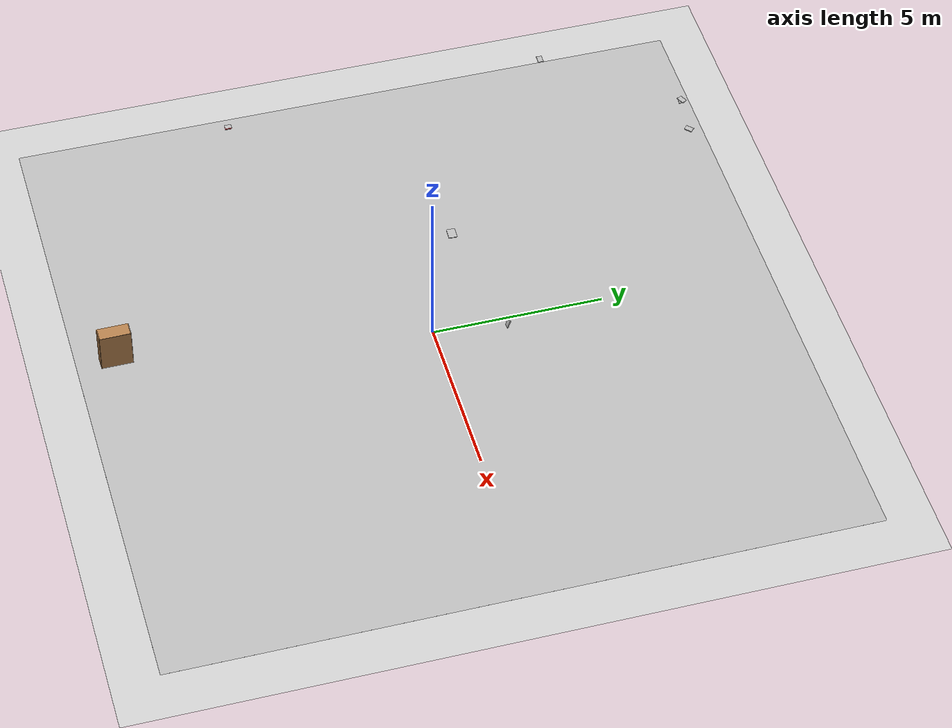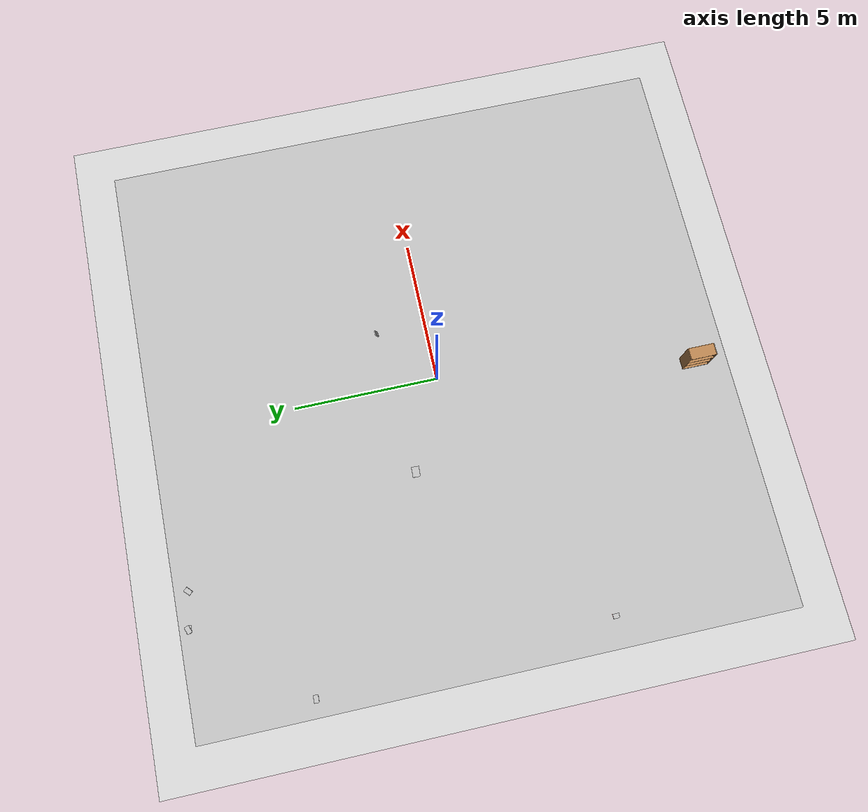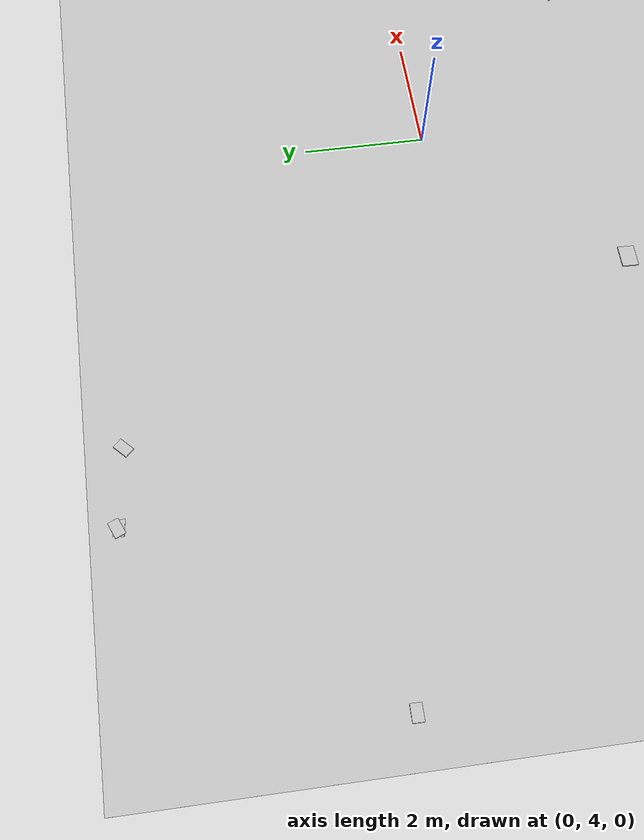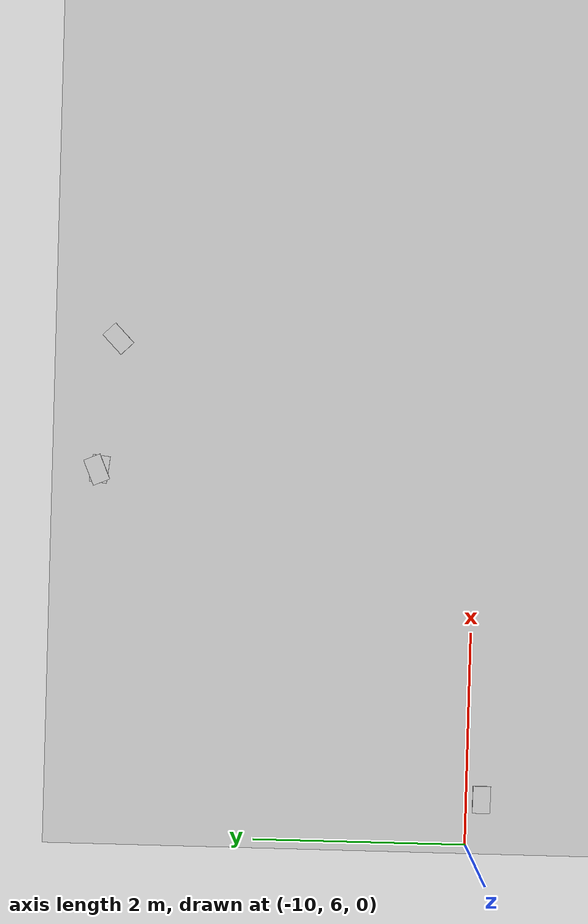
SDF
<sdf version="1.6">
 <world name="default">
  <plugin name="voxblox_ground_truth_plugin" filename="libvoxblox_ground_truth_plugin.so"/>
  <scene><shadows>0</shadows><ambient>0.4 0.4 0.4 1</ambient><background>0.7 0.7 0.7 1</background></scene>
  <light name="sun" type="directional">
   <cast_shadows>0</cast_shadows>
   <pose>0 0 5 0 -0 0</pose>
   <diffuse>0.8 0.8 0.8 1</diffuse>
   <specular>0.1 0.1 0.1 1</specular>
   <attenuation>
    <range>1000</range>
    <constant>0.9</constant>
    <linear>0.01</linear>
    <quadratic>0.001</quadratic>
   </attenuation>
   <direction>-0.5 0.5 -1</direction>
  </light>
  <physics name="default_physics" default="0" type="ode">
   <max_step_size>0.001</max_step_size>
   <real_time_factor>1</real_time_factor>
   <real_time_update_rate>1000</real_time_update_rate>
  </physics>
  <scene><ambient>0.4 0.4 0.4 1</ambient><background>0.7 0.7 0.7 1</background><shadows>1</shadows></scene>
  <spherical_coordinates>
   <surface_model>EARTH_WGS84</surface_model>
   <latitude_deg>0</latitude_deg>
   <longitude_deg>0</longitude_deg>
   <elevation>0</elevation>
   <heading_deg>0</heading_deg>
  </spherical_coordinates>
  <model name="ground_plane">
   <static>1</static>
   <link name="link">
    <collision name="collision">
     <geometry><plane><normal>0 0 1</normal><size>100 100</size></plane></geometry>
     <surface><friction><ode><mu>1</mu><mu2>1</mu2></ode></friction></surface>
    </collision>
    <visual name="visual">
     <cast_shadows>0</cast_shadows>
     <geometry><plane><normal>0 0 1</normal><size>100 100</size></plane></geometry>
     <material>
      <script><uri>file://media/materials/scripts/gazebo.material</uri><name>Gazebo/Grey</name></script>
     </material>
    </visual>
    <velocity_decay><linear>0</linear><angular>0</angular></velocity_decay>
   </link>
  </model>
  <gravity>0 0 -9.8</gravity>
  <magnetic_field>6e-06 2.3e-05 -4.2e-05</magnetic_field>
  <atmosphere type="adiabatic"/>
  <model name="bookshelf">
   <static>1</static>
   <link name="link">
    <inertial><mass>1</mass></inertial>
    <collision name="back">
     <pose>0 0.005 0.6 0 -0 0</pose>
     <geometry><box><size>0.9 0.01 1.2</size></box></geometry>
    </collision>
    <visual name="visual1">
     <pose>0 0.005 0.6 0 -0 0</pose>
     <geometry><box><size>0.9 0.01 1.2</size></box></geometry>
     <material>
      <script><uri>file://media/materials/scripts/gazebo.material</uri><name>Gazebo/Wood</name></script>
     </material>
    </visual>
    <collision name="left_side">
     <pose>0.45 -0.195 0.6 0 -0 0</pose>
     <geometry><box><size>0.02 0.4 1.2</size></box></geometry>
    </collision>
    <visual name="visual2">
     <pose>0.45 -0.195 0.6 0 -0 0</pose>
     <geometry><box><size>0.02 0.4 1.2</size></box></geometry>
     <material>
      <script><uri>file://media/materials/scripts/gazebo.material</uri><name>Gazebo/Wood</name></script>
     </material>
    </visual>
    <collision name="right_side">
     <pose>-0.45 -0.195 0.6 0 -0 0</pose>
     <geometry><box><size>0.02 0.4 1.2</size></box></geometry>
    </collision>
    <visual name="visual3">
     <pose>-0.45 -0.195 0.6 0 -0 0</pose>
     <geometry><box><size>0.02 0.4 1.2</size></box></geometry>
     <material>
      <script><uri>file://media/materials/scripts/gazebo.material</uri><name>Gazebo/Wood</name></script>
     </material>
    </visual>
    <collision name="bottom">
     <pose>0 -0.195 0.03 0 -0 0</pose>
     <geometry><box><size>0.88 0.4 0.06</size></box></geometry>
    </collision>
    <visual name="visual4">
     <pose>0 -0.195 0.03 0 -0 0</pose>
     <geometry><box><size>0.88 0.4 0.06</size></box></geometry>
     <material>
      <script><uri>file://media/materials/scripts/gazebo.material</uri><name>Gazebo/Wood</name></script>
     </material>
    </visual>
    <collision name="top">
     <pose>0 -0.195 1.19 0 -0 0</pose>
     <geometry><box><size>0.88 0.4 0.02</size></box></geometry>
    </collision>
    <visual name="visual5">
     <pose>0 -0.195 1.19 0 -0 0</pose>
     <geometry><box><size>0.88 0.4 0.02</size></box></geometry>
     <material>
      <script><uri>file://media/materials/scripts/gazebo.material</uri><name>Gazebo/Wood</name></script>
     </material>
    </visual>
    <collision name="low_shelf">
     <pose>0 -0.195 0.43 0 -0 0</pose>
     <geometry><box><size>0.88 0.4 0.02</size></box></geometry>
    </collision>
    <visual name="visual6">
     <pose>0 -0.195 0.43 0 -0 0</pose>
     <geometry><box><size>0.88 0.4 0.02</size></box></geometry>
     <material>
      <script><uri>file://media/materials/scripts/gazebo.material</uri><name>Gazebo/Wood</name></script>
     </material>
    </visual>
    <collision name="high_shelf">
     <pose>0 -0.195 0.8 0 -0 0</pose>
     <geometry><box><size>0.88 0.4 0.02</size></box></geometry>
    </collision>
    <visual name="visual7">
     <pose>0 -0.195 0.8 0 -0 0</pose>
     <geometry><box><size>0.88 0.4 0.02</size></box></geometry>
     <material>
      <script><uri>file://media/materials/scripts/gazebo.material</uri><name>Gazebo/Wood</name></script>
     </material>
    </visual>
   </link>
   <pose>-1.08243 -8.86921 0 0 0 -1.56827</pose>
  </model>
  <model name="book_10">
   <link name="cover">
    <pose>0 -0.000108 0.015405 0 -0 0</pose>
    <visual name="visual">
     <geometry><box><size>0.245 0.16 0.03</size></box></geometry>
     <material>
      <script>
       <uri>model://book_10/materials/scripts</uri>
       <uri>model://book_10/materials/textures</uri>
       <name>book_10</name>
      </script>
     </material>
    </visual>
    <collision name="collision"><geometry><box><size>0.245 0.16 0.03</size></box></geometry></collision>
   </link>
   <link name="page">
    <pose>0 0.000608 0.015405 0 -0 0</pose>
    <visual name="visual">
     <geometry><box><size>0.24502 0.15862 0.028</size></box></geometry>
     <material>
      <lighting>1</lighting>
      <ambient>1 1 1 1</ambient>
      <diffuse>1 1 1 1</diffuse>
      <specular>0.01 0.01 0.01 1</specular>
      <emissive>0 0 0 1</emissive>
      <shader type="vertex"><normal_map>__default__</normal_map></shader>
     </material>
    </visual>
    <collision name="collision"><geometry><box><size>0.245 0.16 0.03</size></box></geometry></collision>
   </link>
   <static>1</static>
   <pose>1.58252 1.72751 1.53136 -3.12764 1.25017 -1.50569</pose>
  </model>
  <model name="book_7">
   <link name="cover">
    <pose>0 -0.000108 0.005 0 -0 0</pose>
    <visual name="visual">
     <geometry><box><size>0.245 0.16 0.01</size></box></geometry>
     <material>
      <script>
       <uri>model://book_7/materials/scripts</uri>
       <uri>model://book_7/materials/textures</uri>
       <name>book_7</name>
      </script>
     </material>
    </visual>
    <collision name="collision"><geometry><box><size>0.245 0.16 0.01</size></box></geometry></collision>
   </link>
   <link name="page">
    <pose>0 0.000608 0.005 0 -0 0</pose>
    <visual name="visual">
     <geometry><box><size>0.24502 0.15862 0.008</size></box></geometry>
     <material>
      <lighting>1</lighting>
      <ambient>1 1 1 1</ambient>
      <diffuse>1 1 1 1</diffuse>
      <specular>0.01 0.01 0.01 1</specular>
      <emissive>0 0 0 1</emissive>
      <shader type="vertex"><normal_map>__default__</normal_map></shader>
     </material>
    </visual>
    <collision name="collision"><geometry><box><size>0.245 0.16 0.008</size></box></geometry></collision>
   </link>
   <static>1</static>
   <pose>-6.53983 9.47094 0.790989 0 0 -0.119957</pose>
  </model>
  <model name="book_4_0">
   <link name="cover">
    <pose>0 -0.000108 0.01 0 -0 0</pose>
    <visual name="visual">
     <geometry><box><size>0.245 0.16 0.02</size></box></geometry>
     <material>
      <script>
       <uri>model://book_4/materials/scripts</uri>
       <uri>model://book_4/materials/textures</uri>
       <name>book_4</name>
      </script>
     </material>
     <cast_shadows>0</cast_shadows>
    </visual>
    <collision name="collision"><geometry><box><size>0.245 0.16 0.02</size></box></geometry></collision>
   </link>
   <link name="page">
    <pose>0 0.000608 0.01 0 -0 0</pose>
    <visual name="visual">
     <geometry><box><size>0.24502 0.15862 0.018</size></box></geometry>
     <material>
      <lighting>1</lighting>
      <ambient>1 1 1 1</ambient>
      <diffuse>1 1 1 1</diffuse>
      <specular>0.01 0.01 0.01 1</specular>
      <emissive>0 0 0 1</emissive>
      <shader type="vertex"><normal_map>__default__</normal_map></shader>
     </material>
     <cast_shadows>0</cast_shadows>
    </visual>
    <collision name="collision"><geometry><box><size>0.245 0.16 0.018</size></box></geometry></collision>
   </link>
   <static>1</static>
   <pose>-6.54776 9.49752 0.802886 0 -0 0.398229</pose>
  </model>
  <model name="book_1_0">
   <link name="cover">
    <pose>0 -0.000108 0.015405 0 -0 0</pose>
    <visual name="visual">
     <geometry><box><size>0.245 0.16 0.03</size></box></geometry>
     <material>
      <script>
       <uri>model://book_1/materials/scripts</uri>
       <uri>model://book_1/materials/textures</uri>
       <name>book_1</name>
      </script>
     </material>
    </visual>
    <collision name="collision"><geometry><box><size>0.245 0.16 0.03</size></box></geometry></collision>
   </link>
   <link name="page">
    <pose>0 0.000608 0.015405 0 -0 0</pose>
    <visual name="visual">
     <geometry><box><size>0.24502 0.15862 0.028</size></box></geometry>
     <material>
      <lighting>1</lighting>
      <ambient>1 1 1 1</ambient>
      <diffuse>1 1 1 1</diffuse>
      <specular>0.01 0.01 0.01 1</specular>
      <emissive>0 0 0 1</emissive>
      <shader type="vertex"><normal_map>__default__</normal_map></shader>
     </material>
    </visual>
    <collision name="collision"><geometry><box><size>0.245 0.16 0.03</size></box></geometry></collision>
   </link>
   <static>1</static>
   <pose>-5.35464 9.33771 0.723979 0 -0 0.76417</pose>
  </model>
  <model name="newspaper_3_0">
   <link name="link_0">
    <visual name="visual">
     <geometry><box><size>0.35 0.25 0.02</size></box></geometry>
     <material>
      <script>
       <uri>model://newspaper_3/materials/scripts</uri>
       <uri>model://newspaper_3/materials/textures</uri>
       <name>newspaper_3</name>
      </script>
     </material>
    </visual>
    <collision name="collision"><geometry><box><size>0.35 0.25 0.02</size></box></geometry></collision>
   </link>
   <static>1</static>
   <pose>-3.10975 1.41362 0.596959 0 -0 3.1144</pose>
  </model>
  <model name="book_10_0">
   <link name="cover">
    <pose>0 -0.000108 0.015405 0 -0 0</pose>
    <visual name="visual">
     <geometry><box><size>0.245 0.16 0.03</size></box></geometry>
     <material>
      <script>
       <uri>model://book_10/materials/scripts</uri>
       <uri>model://book_10/materials/textures</uri>
       <name>book_10</name>
      </script>
     </material>
    </visual>
    <collision name="collision"><geometry><box><size>0.245 0.16 0.03</size></box></geometry></collision>
   </link>
   <link name="page">
    <pose>0 0.000608 0.015405 0 -0 0</pose>
    <visual name="visual">
     <geometry><box><size>0.24502 0.15862 0.028</size></box></geometry>
     <material>
      <lighting>1</lighting>
      <ambient>1 1 1 1</ambient>
      <diffuse>1 1 1 1</diffuse>
      <specular>0.01 0.01 0.01 1</specular>
      <emissive>0 0 0 1</emissive>
      <shader type="vertex"><normal_map>__default__</normal_map></shader>
     </material>
    </visual>
    <collision name="collision"><geometry><box><size>0.245 0.16 0.03</size></box></geometry></collision>
   </link>
   <static>1</static>
   <pose>-9.45293 5.92846 0.722801 0 -0 3.12799</pose>
  </model>
  <model name="Floor_room">
   <link name="main">
    <pose>0 0 0.01 0 -0 0</pose>
    <collision name="main_Collision"><geometry><box><size>20 20 0.001</size></box></geometry></collision>
    <visual name="main_Visual">
     <geometry><box><size>20 20 0.001</size></box></geometry>
     <material>
      <script>
       <uri>model://Floor_room/materials/scripts</uri>
       <uri>model://Floor_room/materials/textures</uri>
       <name>floor_room</name>
      </script>
     </material>
    </visual>
   </link>
   <static>1</static>
   <pose>-0.0718 -0.016894 0.012233 0 -0 0</pose>
  </model>
  <model name="biscuit_box">
   <link name="link">
    <pose>0 0 0.025 0 -0 0</pose>
    <visual name="visual">
     <geometry><box><size>0.2 0.15 0.05</size></box></geometry>
     <material>
      <ambient>0.423 0.019 0.035 1</ambient>
      <diffuse>0.423 0.019 0.035 1</diffuse>
      <specular>0.01 0.01 0.01 1</specular>
      <emissive>0 0 0 1</emissive>
     </material>
    </visual>
    <collision name="collision"><geometry><box><size>0.1 0.1 0.15</size></box></geometry></collision>
   </link>
   <link name="link_1">
    <pose>0 0 0.05 0 -0 0</pose>
    <visual name="visual">
     <geometry><box><size>0.2 0.15 0.001</size></box></geometry>
     <material>
      <script>
       <uri>model://biscuit_box/materials/scripts</uri>
       <uri>model://biscuit_box/materials/textures</uri>
       <name>biscuit_pat</name>
      </script>
     </material>
    </visual>
    <collision name="collision"><geometry><box><size>0.1 0.1 0.15</size></box></geometry></collision>
   </link>
   <static>1</static>
   <pose>-9.02362 -3.85019 0.701333 0 -0 1.57737</pose>
  </model>
 </world>
</sdf>
